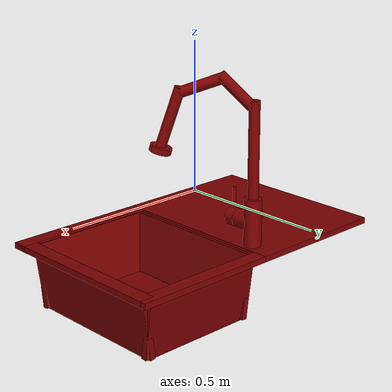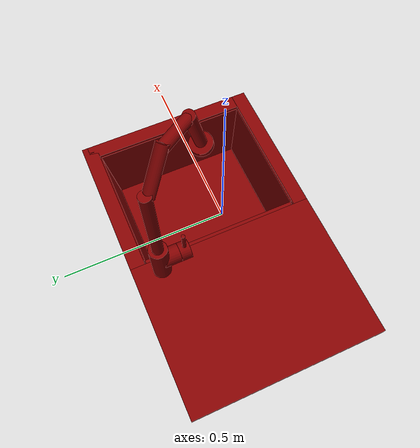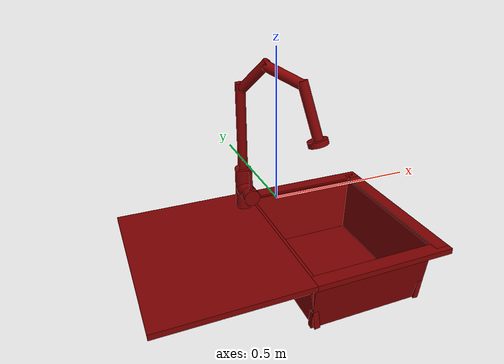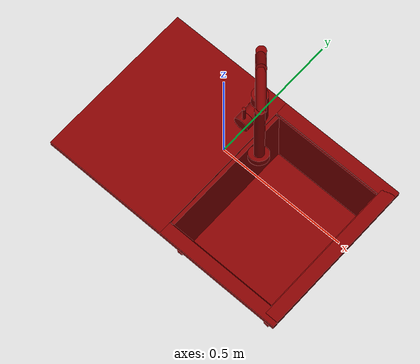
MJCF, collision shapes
<mujoco model="model">
  <asset>
    <material name="01_PBR_Snow-white" specular="0.5" shininess="0.36" rgba="0.800000 0.800000 0.800000 1.000000"/>
    <material name="PBR_Black" specular="0.5" shininess="0.36" rgba="0.800000 0.800000 0.800000 1.000000"/>
    <material name="PBR_Metal" specular="0.5" shininess="0.36" rgba="0.800000 0.800000 0.800000 1.000000"/>
    <mesh file="visuals/model_0.obj" name="model_0_vis" scale="1 1 1"/>
    <mesh file="visuals/model_1.obj" name="model_1_vis" scale="1 1 1"/>
    <mesh file="visuals/model_2.obj" name="model_2_vis" scale="1 1 1"/>
    <material name="05_PBR_Safari" specular="0.5" shininess="0.36" rgba="0.800000 0.800000 0.800000 1.000000"/>
    <material name="PBR_Filter" specular="0.5" shininess="0.36" rgba="0.800000 0.800000 0.800000 1.000000"/>
    <mesh file="visuals/spout_0.obj" name="spout_0_vis" scale="1 1 1"/>
    <mesh file="visuals/spout_1.obj" name="spout_1_vis" scale="1 1 1"/>
    <mesh file="visuals/spout_2.obj" name="spout_2_vis" scale="1 1 1"/>
    <mesh file="visuals/handle_0.obj" name="handle_0_vis" scale="1 1 1"/>
  </asset>
  <default>
    <default class="visual">
      <geom conaffinity="0" contype="0" group="1" type="mesh"/>
    </default>
    <default class="collision">
      <geom group="0" rgba="0.5 0 0 0.5" solimp="0.998 0.998 0.001" solref="0.001 2"/>
    </default>
    <default class="region">
      <geom group="1" conaffinity="0" contype="0" rgba="0 1 0 0"/>
    </default>
  </default>
  <worldbody>
    <body>
      <!-- exterior bounding box points -->
      <!-- interior bounding box points -->
      <body name="object">
        <geom solimp="0.998 0.998 0.001" solref="0.001 1" density="100" friction="0.95 0.3 0.1" type="mesh" mesh="model_0_vis" material="PBR_Black" class="visual"/>
        <geom solimp="0.998 0.998 0.001" solref="0.001 1" density="100" friction="0.95 0.3 0.1" type="mesh" mesh="model_1_vis" material="PBR_Metal" class="visual"/>
        <geom solimp="0.998 0.998 0.001" solref="0.001 1" density="100" friction="0.95 0.3 0.1" type="mesh" mesh="model_2_vis" material="01_PBR_Snow-white" class="visual"/>
        <!-- Bottom -->
        <geom class="collision" type="box" pos="0.23 0 -0.36" size="0.2 0.25 0.01"/>
        <!-- Left Wall -->
        <geom class="collision" type="box" pos="0.02 0 -0.255" size="0.01 0.265 0.11" axisangle="0 1 0 -8"/>
        <!-- Right Wall -->
        <geom class="collision" type="box" pos="0.44 0 -0.255" size="0.01 0.265 0.11" axisangle="0 1 0 8"/>
        <!-- Back Wall -->
        <geom class="collision" type="box" pos="0.23 0.26 -0.255" size="0.215 0.01 0.11" axisangle="1 0 0 -8"/>
        <!-- Front Wall -->
        <geom class="collision" type="box" pos="0.23 -0.26 -0.255" size="0.215 0.01 0.11" axisangle="1 0 0 8"/>
        <!-- Storage -->
        <geom class="collision" type="box" pos="-0.25 0 -0.148" size="0.25 0.32 0.01"/>
        <!-- Back Ledge -->
        <geom class="collision" type="box" pos="0.25 0.295 -0.148" size="0.25 0.025 0.01"/>
        <!-- Front Ledge -->
        <geom class="collision" type="box" pos="0.25 -0.295 -0.148" size="0.25 0.025 0.01"/>
        <!-- Right Ledge -->
        <geom class="collision" type="box" pos="0.475 0 -0.148" size="0.025 0.3 0.01"/>
        <!-- Faucet Base -->
        <geom class="collision" type="cylinder" pos="-0.039 0.2245 -0.059" size="0.0298 0.08 0"/>
        <!-- Handle Attach Point-->
        <geom class="collision" type="cylinder" pos="-0.0385 0.19 -0.06" size="0.03 0.028 0" axisangle="1 0 0 90"/>
        <body name="spout">
          <joint axis="0 0 1" limited="true" name="faucet_joint" range="-130 50" pos="-0.039 0.2245 0"/>
          <geom solimp="0.998 0.998 0.001" solref="0.001 1" density="100" friction="0.95 0.3 0.1" type="mesh" mesh="spout_0_vis" material="PBR_Filter" class="visual"/>
          <geom solimp="0.998 0.998 0.001" solref="0.001 1" density="100" friction="0.95 0.3 0.1" type="mesh" mesh="spout_1_vis" material="05_PBR_Safari" class="visual"/>
          <geom solimp="0.998 0.998 0.001" solref="0.001 1" density="100" friction="0.95 0.3 0.1" type="mesh" mesh="spout_2_vis" material="PBR_Metal" class="visual"/>
          <!-- Faucet -->
          <geom class="collision" type="cylinder" pos="-0.039 0.2245 0.18" size="0.018 0.16 0"/>
          <geom class="collision" type="cylinder" pos="-0.002 0.18 0.37" size="0.018 0.07 0" axisangle="45 40 0 45"/>
          <geom class="collision" type="cylinder" pos="0.067 0.1 0.385" size="0.018 0.07 0" axisangle="45 40 0 -70"/>
          <geom class="collision" type="cylinder" pos="0.13 0.024 0.28" size="0.018 0.1 0" axisangle="45 40 0 -18"/>
          <geom class="collision" type="cylinder" pos="0.15 0 0.175" size="0.036 0.01 0" axisangle="45 40 0 -16"/>
          <geom class="collision" type="cylinder" pos="0.15 0 0.175" size="0.036 0.01 0" axisangle="45 40 0 -16"/>
        </body>
        <body name="handle">
          <joint axis="0 1 0" limited="true" name="knob_joint" range="-90 90" pos="-0.0385 0.162 -0.06"/>
          <joint axis="1 0 0" type="hinge" limited="true" name="knob_hinge_joint" range="0 22" pos="-0.0385 0.16 -0.06"/>
          <geom solimp="0.998 0.998 0.001" solref="0.001 1" density="100" friction="0.95 0.3 0.1" type="mesh" mesh="handle_0_vis" material="05_PBR_Safari" class="visual"/>
          <!-- Main -->
          <geom class="collision" type="cylinder" pos="-0.0385 0.145 -0.06" size="0.03 0.017 0" axisangle="1 0 0 90"/>
          <!-- Handle -->
          <geom class="collision" type="cylinder" pos="-0.0385 0.143 0.004" size="0.006 0.036 0"/>
        </body>
        <geom class="region" name="reg_main" type="box" pos="0.0 0.0 -0.27" size="0.5 0.32 0.13"/>
        <geom class="region" name="reg_basin" type="box" pos="0.0 0.0 0.0" size="0.0001 0.0001 0.0001"/>
      </body>
    </body>
  </worldbody>
</mujoco>
